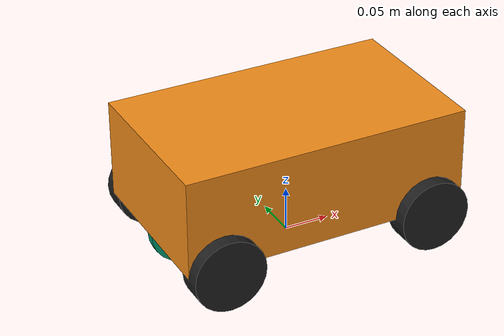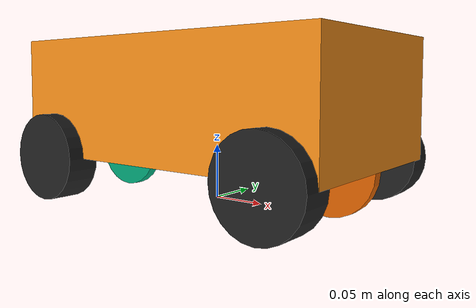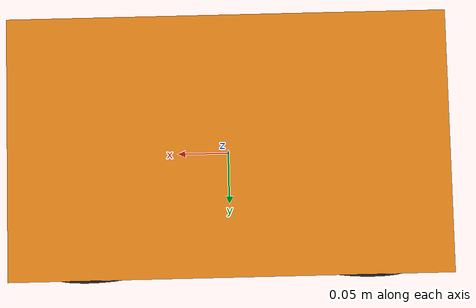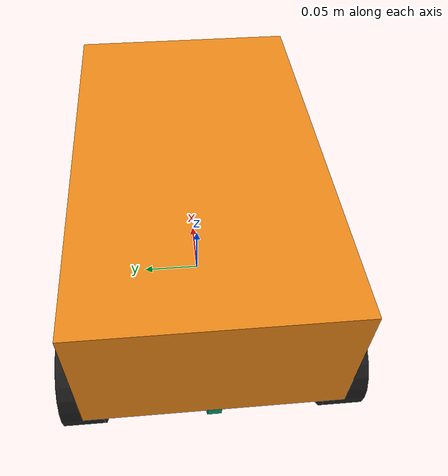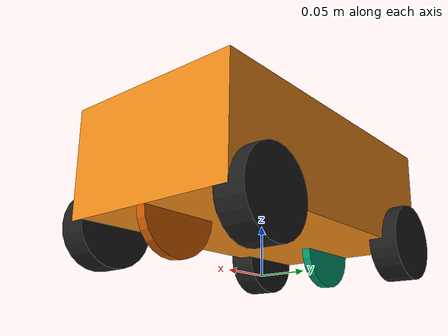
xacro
<?xml version="1.0"?>
<!-- 4 Wheel Robot with front steering and rear drive -->
<robot xmlns:xacro="http://www.ros.org/wiki/xacro" name="carlikebot_robot">
  <xacro:arg name="prefix" default="" />

  <xacro:include filename="$(find audi_etron)/urdf/carlikebot_description.urdf.xacro" />

  <!-- Import Rviz colors -->
  <xacro:include filename="$(find audi_etron)/urdf/carlikebot.materials.xacro" />

  <!-- Import carlikebot ros2_control description -->
  <xacro:include filename="$(find audi_etron)/ros2_control/carlikebot.ros2_control.xacro" />

  <xacro:carlikebot prefix="$(arg prefix)" />

  <xacro:carlikebot_ros2_control
    name="CarlikeBot" prefix="$(arg prefix)" />

</robot>

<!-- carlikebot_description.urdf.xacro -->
<robot xmlns:xacro="http://www.ros.org/wiki/xacro">

  <xacro:macro name="carlikebot" params="prefix">

  <!-- Constants for robot dimensions -->
  <xacro:property name="PI" value="3.1415926535897931"/>
  <xacro:property name="base_mass" value="4.0" /> <!-- arbitrary value for base mass -->
  <xacro:property name="base_width" value="0.19" />
  <xacro:property name="base_length" value="0.32" />
  <xacro:property name="base_height" value="0.11" />
  <xacro:property name="wheelbase" value="0.24" />
  <xacro:property name="wheel_mass" value="0.34055" /> <!-- arbitrary value for wheel mass -->
  <xacro:property name="wheel_len" value="0.03" />
  <xacro:property name="wheel_radius" value="0.04" />

  <!-- Base Link -->
  <link name="${prefix}base_link" />

  <!-- Chassis -->

  <link name="${prefix}chassis_link">
    <collision>
      <origin xyz="0 0 0" rpy="0 0 0"/>
      <geometry>
        <box size="${base_length} ${base_width} ${base_height}"/>
      </geometry>
    </collision>

    <visual>
      <origin xyz="0 0 0" rpy="0 0 0"/>
      <geometry>
        <box size="${base_length} ${base_width} ${base_height}"/>
      </geometry>
      <material name="orange"/>
    </visual>

    <inertial>
      <origin xyz="0 0 0" rpy="0 0 0"/>
      <mass value="${base_mass}"/>
        <inertia
          ixx="0.000270" ixy="0.0" ixz="0.0"
          iyy="0.000270" iyz="0.0"
          izz="0.000426"/>
      </inertial>
    </link>

    <joint name="${prefix}chassis_joint" type="fixed">
      <parent link="${prefix}base_link"/>
      <child link="${prefix}chassis_link"/>
      <origin xyz="0 0 ${base_height/2 + wheel_radius}" rpy="0 0 0"/>
      <axis xyz="0 0 1"/>
      <dynamics damping="0.2"/>
    </joint>

    <!-- rear wheels -->

    <!-- virtual rear wheel -->

    <link name="${prefix}virtual_rear_wheel">
      <visual>
        <origin xyz="0 0 0" rpy="${PI/2} 0 ${PI/2}"/>
        <geometry>
          <cylinder length="0.01" radius="${wheel_radius}"/>
        </geometry>
        <material name="invisible"/>
      </visual>
    </link>

    <joint name="${prefix}virtual_rear_wheel_joint" type="continuous">
      <parent link="${prefix}chassis_link"/>
      <child link="${prefix}virtual_rear_wheel"/>
      <origin xyz="-${wheelbase/2} 0 -${base_height/2}" rpy="0 0 ${PI/2}"/>
      <axis xyz="1 0 0"/>
      <limit effort="100.0" velocity="100.0"/>
      <dynamics damping="0.2"/>
    </joint>

    <!-- rear right wheel -->

    <link name="${prefix}rear_right_wheel">
      <collision>
        <origin xyz="0 0 0" rpy="${PI/2} 0 ${PI/2}"/>
        <geometry>
          <cylinder length="${wheel_len}" radius="${wheel_radius}"/>
        </geometry>
      </collision>

      <visual>
        <origin xyz="0 0 0" rpy="${PI/2} 0 ${PI/2}"/>
        <geometry>
          <cylinder length="${wheel_len}" radius="${wheel_radius}"/>
        </geometry>
        <material name="black"/>
      </visual>

      <inertial>
        <origin xyz="0 0 0" rpy="${PI/2} 0 ${PI/2}"/>
        <mass value="${wheel_mass}"/>
        <inertia
          ixx="0.000270" ixy="0.0" ixz="0.0"
          iyy="0.000270" iyz="0.0"
          izz="0.000426"/>
      </inertial>

    </link>

    <joint name="${prefix}rear_right_wheel_joint" type="continuous">
      <parent link="${prefix}chassis_link"/>
      <child link="${prefix}rear_right_wheel"/>
      <origin xyz="-${wheelbase/2} ${base_width/2} -${base_height/2}" rpy="0 0 ${PI/2}"/>
      <axis xyz="1 0 0"/>
      <limit effort="100.0" velocity="100.0"/>
      <dynamics damping="0.2"/>
      <mimic joint="${prefix}virtual_rear_wheel_joint" multiplier="1.0" offset="0.0"/>
    </joint>

    <!-- rear left wheel -->
    <link name="${prefix}rear_left_wheel">
        <collision>
          <origin xyz="0 0 0" rpy="${PI/2} 0 ${PI/2}"/>
          <geometry>
            <cylinder length="${wheel_len}" radius="${wheel_radius}"/>
          </geometry>
        </collision>

        <visual>
          <origin xyz="0 0 0" rpy="${PI/2} 0 ${PI/2}"/>
          <geometry>
            <cylinder length="${wheel_len}" radius="${wheel_radius}"/>
          </geometry>
          <material name="black"/>
        </visual>

        <inertial>
          <origin xyz="0 0 0" rpy="${PI/2} 0 ${PI/2}"/>
          <mass value="${wheel_mass}"/>
          <inertia
            ixx="0.000270" ixy="0.0" ixz="0.0"
            iyy="0.000270" iyz="0.0"
            izz="0.000426"/>
        </inertial>

    </link>

    <joint name="${prefix}rear_left_wheel_joint" type="continuous">
      <parent link="${prefix}chassis_link" />
      <child link="${prefix}rear_left_wheel" />
      <origin xyz="-${wheelbase/2} -${base_width/2} -${base_height/2}" rpy="0 0 ${PI/2}"/>
      <axis xyz="1 0 0"/>
      <limit effort="100.0" velocity="100.0"/>
      <dynamics damping="0.2"/>
      <mimic joint="${prefix}virtual_rear_wheel_joint" multiplier="1.0" offset="0.0"/>
    </joint>

    <!-- front wheels -->

    <!-- virtual front wheel -->

    <link name="${prefix}virtual_front_wheel">
      <visual>
        <origin xyz="0 0 0" rpy="${PI/2} 0 ${PI/2}"/>
        <geometry>
          <cylinder length="0.01" radius="${wheel_radius}"/>
        </geometry>
        <material name="invisible"/>
      </visual>
    </link>

    <joint name="${prefix}virtual_front_wheel_joint" type="revolute">
      <parent link="${prefix}chassis_link"/>
      <child link="${prefix}virtual_front_wheel"/>
      <origin xyz="${wheelbase/2} 0 -${base_height/2}" rpy="0 0 ${PI/2}"/>
      <axis xyz="0 0 1"/>
      <limit lower="-0.4" upper="0.4" effort="100.0" velocity="0.0"/>
      <dynamics damping="0.2"/>
    </joint>

    <!-- front right wheel -->

    <link name="${prefix}front_right_wheel">

      <collision>
        <origin xyz="0 0 0" rpy="${PI/2} 0 ${PI/2}"/>
        <geometry>
          <cylinder length="${wheel_len}" radius="${wheel_radius}"/>
        </geometry>
      </collision>

      <visual>
        <origin xyz="0 0 0" rpy="${PI/2} 0 ${PI/2}"/>
        <geometry>
          <cylinder length="${wheel_len}" radius="${wheel_radius}"/>
        </geometry>
        <material name="black"/>
      </visual>

      <inertial>
        <origin xyz="0 0 0" rpy="${PI/2} 0 ${PI/2}"/>
        <mass value="${wheel_mass}"/>
        <inertia
          ixx="0.000270" ixy="0.0" ixz="0.0"
          iyy="0.000270" iyz="0.0"
          izz="0.000426"/>
      </inertial>
    </link>

    <joint name="${prefix}front_right_wheel_joint" type="revolute">
      <parent link="${prefix}chassis_link" />
      <child link="${prefix}front_right_wheel" />
      <origin xyz="${wheelbase/2} ${base_width/2} -${base_height/2}" rpy="0 0 ${PI/2}"/>
      <axis xyz="0 0 1"/>
      <limit lower="-0.4" upper="0.4" effort="100.0" velocity="0.0"/>
      <dynamics damping="0.2"/>
      <mimic joint="${prefix}virtual_front_wheel_joint" multiplier="1.0" offset="0.0"/>
    </joint>

    <!-- front left steering -->

    <link name="${prefix}front_left_wheel">
      <collision>
        <origin xyz="0 0 0" rpy="${PI/2} 0 ${PI/2}"/>
        <geometry>
          <cylinder length="${wheel_len}" radius="${wheel_radius}"/>
        </geometry>
      </collision>

      <visual>
        <origin xyz="0 0 0" rpy="${PI/2} 0 ${PI/2}"/>
        <geometry>
          <cylinder length="${wheel_len}" radius="${wheel_radius}"/>
        </geometry>
        <material name="black"/>
      </visual>

      <inertial>
        <origin xyz="0 0 0" rpy="${PI/2} 0 ${PI/2}"/>
        <mass value="${wheel_mass}"/>
        <inertia
          ixx="0.000270" ixy="0.0" ixz="0.0"
          iyy="0.000270" iyz="0.0"
          izz="0.000426"/>
      </inertial>

    </link>

    <joint name="${prefix}front_left_wheel_joint" type="revolute">
      <parent link="${prefix}chassis_link" />
      <child link="${prefix}front_left_wheel" />
      <origin xyz="${wheelbase/2} -${base_width/2} -${base_height/2}" rpy="0 0 ${PI/2}"/>
      <axis xyz="0 0 1"/>
      <limit lower="-0.4" upper="0.4" effort="100.0" velocity="0.0"/>
      <dynamics damping="0.2"/>
      <mimic joint="${prefix}virtual_front_wheel_joint" multiplier="1.0" offset="0.0"/>
    </joint>

  </xacro:macro>

</robot>
